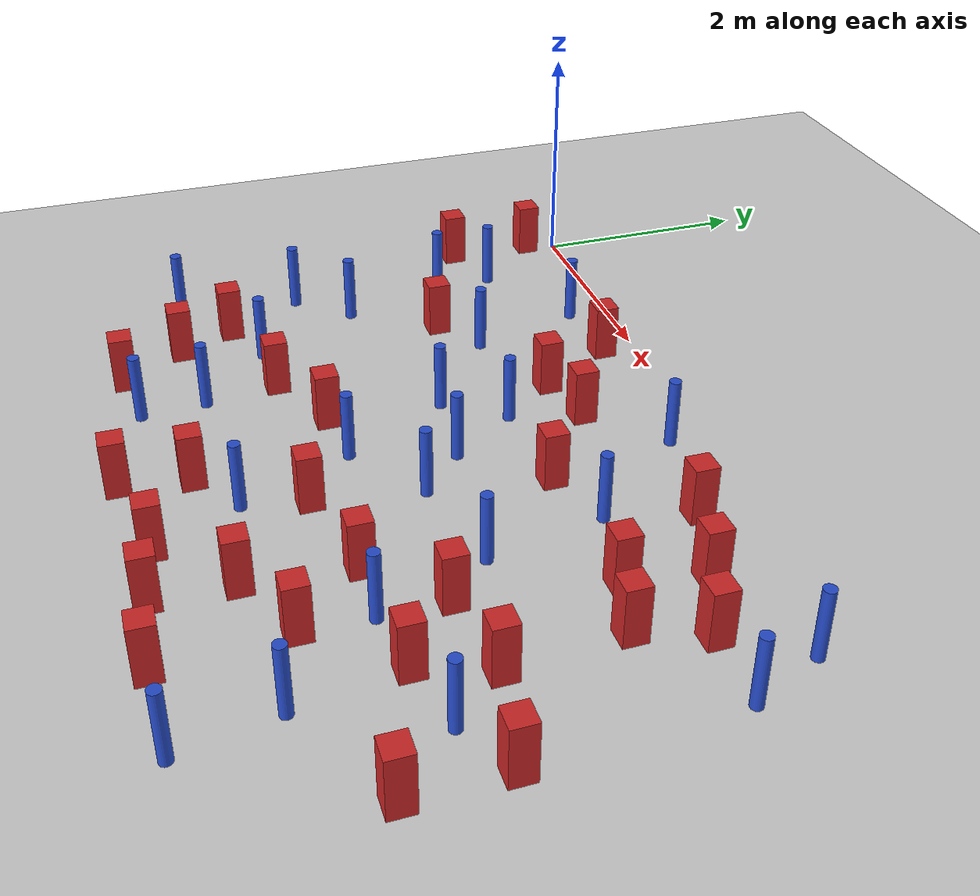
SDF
<sdf version="1.6">
 <world name="default">
  <model name="ground_plane">
   <static>1</static>
   <link name="link">
    <collision name="collision">
     <geometry><plane><normal>0 0 1</normal><size>100 100</size></plane></geometry>
     <surface><friction><ode><mu>100</mu><mu2>50</mu2></ode></friction></surface>
    </collision>
    <visual name="visual">
     <cast_shadows>0</cast_shadows>
     <geometry><plane><normal>0 0 1</normal><size>100 100</size></plane></geometry>
     <material>
      <ambient>1.0 1.0 1.0 1.0</ambient>
      <diffuse>0.8 0.8 0.8 1.0</diffuse>
      <specular>0.01 0.01 0.01 1.000000</specular>
     </material>
    </visual>
   </link>
  </model>
  <model name="pole_obstacle0">
   <static>true</static>
   <pose>3.56533259858 -0.322572710394 7.38925637345e-09 -8.471706928e-08 1.24976765172e-08 -1.74513093013e-07</pose>
   <link name="link">
    <pose>0 0 0.3 0 -0 0</pose>
    <inertial>
     <mass>1</mass>
     <inertia><ixx>0.145833</ixx><ixy>0</ixy><ixz>0</ixz><iyy>0.145833</iyy><iyz>0</iyz><izz>0.125</izz></inertia>
    </inertial>
    <collision name="collision">
     <geometry><cylinder><radius>0.05</radius><length>.6</length></cylinder></geometry>
    </collision>
    <visual name="visual">
     <geometry><cylinder><radius>0.05</radius><length>.6</length></cylinder></geometry>
     <material>
      <script><name>Gazebo/Blue</name><uri>file://media/materials/scripts/gazebo.material</uri></script>
     </material>
    </visual>
   </link>
  </model>
  <model name="square_post_obstacle8">
   <static>true</static>
   <pose>2.43075801813 -2.92088235214 1.91545236811e-07 -7.35059704564e-06 1.12565212e-07 2.39332434364e-05</pose>
   <link name="link">
    <pose>0 0 0.25 0 -0 0</pose>
    <inertial>
     <mass>100</mass>
     <inertia>
      <ixx>0.166667</ixx>
      <ixy>0</ixy>
      <ixz>0</ixz>
      <iyy>0.166667</iyy>
      <iyz>0</iyz>
      <izz>0.166667</izz>
     </inertia>
    </inertial>
    <collision name="collision"><geometry><box><size>.2 .2 .5</size></box></geometry></collision>
    <visual name="visual">
     <geometry><box><size>.2 .2 .5</size></box></geometry>
     <material>
      <script><name>Gazebo/Red</name><uri>file://media/materials/scripts/gazebo.material</uri></script>
     </material>
    </visual>
   </link>
  </model>
  <model name="pole_obstacle6">
   <static>true</static>
   <pose>6.30852490096 -1.00948622064 7.38925637345e-09 -8.471706928e-08 1.24976765101e-08 -1.74513093015e-07</pose>
   <link name="link">
    <pose>0 0 0.3 0 -0 0</pose>
    <inertial>
     <mass>1</mass>
     <inertia><ixx>0.145833</ixx><ixy>0</ixy><ixz>0</ixz><iyy>0.145833</iyy><iyz>0</iyz><izz>0.125</izz></inertia>
    </inertial>
    <collision name="collision">
     <geometry><cylinder><radius>0.05</radius><length>.6</length></cylinder></geometry>
    </collision>
    <visual name="visual">
     <geometry><cylinder><radius>0.05</radius><length>.6</length></cylinder></geometry>
     <material>
      <script><name>Gazebo/Blue</name><uri>file://media/materials/scripts/gazebo.material</uri></script>
     </material>
    </visual>
   </link>
  </model>
  <model name="square_post_obstacle10">
   <static>true</static>
   <pose>-0.0478637047065 -0.286412599009 1.91545236811e-07 -7.35059704564e-06 1.12565212e-07 2.39332434364e-05</pose>
   <link name="link">
    <pose>0 0 0.25 0 -0 0</pose>
    <inertial>
     <mass>100</mass>
     <inertia>
      <ixx>0.166667</ixx>
      <ixy>0</ixy>
      <ixz>0</ixz>
      <iyy>0.166667</iyy>
      <iyz>0</iyz>
      <izz>0.166667</izz>
     </inertia>
    </inertial>
    <collision name="collision"><geometry><box><size>.2 .2 .5</size></box></geometry></collision>
    <visual name="visual">
     <geometry><box><size>.2 .2 .5</size></box></geometry>
     <material>
      <script><name>Gazebo/Red</name><uri>file://media/materials/scripts/gazebo.material</uri></script>
     </material>
    </visual>
   </link>
  </model>
  <model name="square_post_obstacle12">
   <static>true</static>
   <pose>5.5033230095 -1.52236215831 1.91545236811e-07 -7.35059704564e-06 1.12565212e-07 2.39332434364e-05</pose>
   <link name="link">
    <pose>0 0 0.25 0 -0 0</pose>
    <inertial>
     <mass>100</mass>
     <inertia>
      <ixx>0.166667</ixx>
      <ixy>0</ixy>
      <ixz>0</ixz>
      <iyy>0.166667</iyy>
      <iyz>0</iyz>
      <izz>0.166667</izz>
     </inertia>
    </inertial>
    <collision name="collision"><geometry><box><size>.2 .2 .5</size></box></geometry></collision>
    <visual name="visual">
     <geometry><box><size>.2 .2 .5</size></box></geometry>
     <material>
      <script><name>Gazebo/Red</name><uri>file://media/materials/scripts/gazebo.material</uri></script>
     </material>
    </visual>
   </link>
  </model>
  <model name="pole_obstacle11">
   <static>true</static>
   <pose>0.472975062217 -1.38549482698 7.38925637345e-09 -8.47170692798e-08 1.24976765018e-08 -1.7451309302e-07</pose>
   <link name="link">
    <pose>0 0 0.3 0 -0 0</pose>
    <inertial>
     <mass>1</mass>
     <inertia><ixx>0.145833</ixx><ixy>0</ixy><ixz>0</ixz><iyy>0.145833</iyy><iyz>0</iyz><izz>0.125</izz></inertia>
    </inertial>
    <collision name="collision">
     <geometry><cylinder><radius>0.05</radius><length>.6</length></cylinder></geometry>
    </collision>
    <visual name="visual">
     <geometry><cylinder><radius>0.05</radius><length>.6</length></cylinder></geometry>
     <material>
      <script><name>Gazebo/Blue</name><uri>file://media/materials/scripts/gazebo.material</uri></script>
     </material>
    </visual>
   </link>
  </model>
  <model name="square_post_obstacle22">
   <static>true</static>
   <pose>3.46675804985 -3.27936390242 1.91545236811e-07 -7.35059704564e-06 1.12565212e-07 2.39332434364e-05</pose>
   <link name="link">
    <pose>0 0 0.25 0 -0 0</pose>
    <inertial>
     <mass>100</mass>
     <inertia>
      <ixx>0.166667</ixx>
      <ixy>0</ixy>
      <ixz>0</ixz>
      <iyy>0.166667</iyy>
      <iyz>0</iyz>
      <izz>0.166667</izz>
     </inertia>
    </inertial>
    <collision name="collision"><geometry><box><size>.2 .2 .5</size></box></geometry></collision>
    <visual name="visual">
     <geometry><box><size>.2 .2 .5</size></box></geometry>
     <material>
      <script><name>Gazebo/Red</name><uri>file://media/materials/scripts/gazebo.material</uri></script>
     </material>
    </visual>
   </link>
  </model>
  <model name="pole_obstacle16">
   <static>true</static>
   <pose>4.4877822202 -2.19944711472 7.38925637345e-09 -8.47170692798e-08 1.24976764937e-08 -1.74513093023e-07</pose>
   <link name="link">
    <pose>0 0 0.3 0 -0 0</pose>
    <inertial>
     <mass>1</mass>
     <inertia><ixx>0.145833</ixx><ixy>0</ixy><ixz>0</ixz><iyy>0.145833</iyy><iyz>0</iyz><izz>0.125</izz></inertia>
    </inertial>
    <collision name="collision">
     <geometry><cylinder><radius>0.05</radius><length>.6</length></cylinder></geometry>
    </collision>
    <visual name="visual">
     <geometry><cylinder><radius>0.05</radius><length>.6</length></cylinder></geometry>
     <material>
      <script><name>Gazebo/Blue</name><uri>file://media/materials/scripts/gazebo.material</uri></script>
     </material>
    </visual>
   </link>
  </model>
  <model name="square_post_obstacle38">
   <static>true</static>
   <pose>3.75333104652 -1.42210569537 1.91545236811e-07 -7.35059704564e-06 1.12565212e-07 2.39332434364e-05</pose>
   <link name="link">
    <pose>0 0 0.25 0 -0 0</pose>
    <inertial>
     <mass>100</mass>
     <inertia>
      <ixx>0.166667</ixx>
      <ixy>0</ixy>
      <ixz>0</ixz>
      <iyy>0.166667</iyy>
      <iyz>0</iyz>
      <izz>0.166667</izz>
     </inertia>
    </inertial>
    <collision name="collision"><geometry><box><size>.2 .2 .5</size></box></geometry></collision>
    <visual name="visual">
     <geometry><box><size>.2 .2 .5</size></box></geometry>
     <material>
      <script><name>Gazebo/Red</name><uri>file://media/materials/scripts/gazebo.material</uri></script>
     </material>
    </visual>
   </link>
  </model>
  <model name="pole_obstacle40">
   <static>true</static>
   <pose>2.83659885265 -1.45965572089 7.38925637345e-09 -8.471706928e-08 1.24976765152e-08 -1.74513093012e-07</pose>
   <link name="link">
    <pose>0 0 0.3 0 -0 0</pose>
    <inertial>
     <mass>1</mass>
     <inertia><ixx>0.145833</ixx><ixy>0</ixy><ixz>0</ixz><iyy>0.145833</iyy><iyz>0</iyz><izz>0.125</izz></inertia>
    </inertial>
    <collision name="collision">
     <geometry><cylinder><radius>0.05</radius><length>.6</length></cylinder></geometry>
    </collision>
    <visual name="visual">
     <geometry><cylinder><radius>0.05</radius><length>.6</length></cylinder></geometry>
     <material>
      <script><name>Gazebo/Blue</name><uri>file://media/materials/scripts/gazebo.material</uri></script>
     </material>
    </visual>
   </link>
  </model>
  <model name="pole_obstacle49">
   <static>true</static>
   <pose>3.6028088051 -2.39364469777 7.38925637345e-09 -8.47170692798e-08 1.24976764939e-08 -1.74513093025e-07</pose>
   <link name="link">
    <pose>0 0 0.3 0 -0 0</pose>
    <inertial>
     <mass>1</mass>
     <inertia><ixx>0.145833</ixx><ixy>0</ixy><ixz>0</ixz><iyy>0.145833</iyy><iyz>0</iyz><izz>0.125</izz></inertia>
    </inertial>
    <collision name="collision">
     <geometry><cylinder><radius>0.05</radius><length>.6</length></cylinder></geometry>
    </collision>
    <visual name="visual">
     <geometry><cylinder><radius>0.05</radius><length>.6</length></cylinder></geometry>
     <material>
      <script><name>Gazebo/Blue</name><uri>file://media/materials/scripts/gazebo.material</uri></script>
     </material>
    </visual>
   </link>
  </model>
  <model name="square_post_obstacle53">
   <static>true</static>
   <pose>6.35571938624 -3.35591718292 1.91545236811e-07 -7.35059704564e-06 1.12565212e-07 2.39332434364e-05</pose>
   <link name="link">
    <pose>0 0 0.25 0 -0 0</pose>
    <inertial>
     <mass>100</mass>
     <inertia>
      <ixx>0.166667</ixx>
      <ixy>0</ixy>
      <ixz>0</ixz>
      <iyy>0.166667</iyy>
      <iyz>0</iyz>
      <izz>0.166667</izz>
     </inertia>
    </inertial>
    <collision name="collision"><geometry><box><size>.2 .2 .5</size></box></geometry></collision>
    <visual name="visual">
     <geometry><box><size>.2 .2 .5</size></box></geometry>
     <material>
      <script><name>Gazebo/Red</name><uri>file://media/materials/scripts/gazebo.material</uri></script>
     </material>
    </visual>
   </link>
  </model>
  <model name="square_post_obstacle56">
   <static>true</static>
   <pose>4.88244618017 -4.63339340298 1.91545236811e-07 -7.35059704564e-06 1.12565212e-07 2.39332434364e-05</pose>
   <link name="link">
    <pose>0 0 0.25 0 -0 0</pose>
    <inertial>
     <mass>100</mass>
     <inertia>
      <ixx>0.166667</ixx>
      <ixy>0</ixy>
      <ixz>0</ixz>
      <iyy>0.166667</iyy>
      <iyz>0</iyz>
      <izz>0.166667</izz>
     </inertia>
    </inertial>
    <collision name="collision"><geometry><box><size>.2 .2 .5</size></box></geometry></collision>
    <visual name="visual">
     <geometry><box><size>.2 .2 .5</size></box></geometry>
     <material>
      <script><name>Gazebo/Red</name><uri>file://media/materials/scripts/gazebo.material</uri></script>
     </material>
    </visual>
   </link>
  </model>
  <model name="pole_obstacle58">
   <static>true</static>
   <pose>0.205299897545 -3.85077561081 7.38925637345e-09 -8.47170692792e-08 1.24976764352e-08 -1.74513093043e-07</pose>
   <link name="link">
    <pose>0 0 0.3 0 -0 0</pose>
    <inertial>
     <mass>1</mass>
     <inertia><ixx>0.145833</ixx><ixy>0</ixy><ixz>0</ixz><iyy>0.145833</iyy><iyz>0</iyz><izz>0.125</izz></inertia>
    </inertial>
    <collision name="collision">
     <geometry><cylinder><radius>0.05</radius><length>.6</length></cylinder></geometry>
    </collision>
    <visual name="visual">
     <geometry><cylinder><radius>0.05</radius><length>.6</length></cylinder></geometry>
     <material>
      <script><name>Gazebo/Blue</name><uri>file://media/materials/scripts/gazebo.material</uri></script>
     </material>
    </visual>
   </link>
  </model>
  <model name="pole_obstacle59">
   <static>true</static>
   <pose>0.379165182688 -2.7855094456 7.38925637345e-09 -8.471706928e-08 1.24976765084e-08 -1.74513093017e-07</pose>
   <link name="link">
    <pose>0 0 0.3 0 -0 0</pose>
    <inertial>
     <mass>1</mass>
     <inertia><ixx>0.145833</ixx><ixy>0</ixy><ixz>0</ixz><iyy>0.145833</iyy><iyz>0</iyz><izz>0.125</izz></inertia>
    </inertial>
    <collision name="collision">
     <geometry><cylinder><radius>0.05</radius><length>.6</length></cylinder></geometry>
    </collision>
    <visual name="visual">
     <geometry><cylinder><radius>0.05</radius><length>.6</length></cylinder></geometry>
     <material>
      <script><name>Gazebo/Blue</name><uri>file://media/materials/scripts/gazebo.material</uri></script>
     </material>
    </visual>
   </link>
  </model>
  <model name="square_post_obstacle77">
   <static>true</static>
   <pose>1.34608658798 -4.47227315533 1.91545236811e-07 -7.35059704564e-06 1.12565212e-07 2.39332434364e-05</pose>
   <link name="link">
    <pose>0 0 0.25 0 -0 0</pose>
    <inertial>
     <mass>100</mass>
     <inertia>
      <ixx>0.166667</ixx>
      <ixy>0</ixy>
      <ixz>0</ixz>
      <iyy>0.166667</iyy>
      <iyz>0</iyz>
      <izz>0.166667</izz>
     </inertia>
    </inertial>
    <collision name="collision"><geometry><box><size>.2 .2 .5</size></box></geometry></collision>
    <visual name="visual">
     <geometry><box><size>.2 .2 .5</size></box></geometry>
     <material>
      <script><name>Gazebo/Red</name><uri>file://media/materials/scripts/gazebo.material</uri></script>
     </material>
    </visual>
   </link>
  </model>
  <model name="pole_obstacle85">
   <static>true</static>
   <pose>0.498143849675 -0.878729412502 7.38925637345e-09 -8.47170692798e-08 1.24976764964e-08 -1.74513093023e-07</pose>
   <link name="link">
    <pose>0 0 0.3 0 -0 0</pose>
    <inertial>
     <mass>1</mass>
     <inertia><ixx>0.145833</ixx><ixy>0</ixy><ixz>0</ixz><iyy>0.145833</iyy><iyz>0</iyz><izz>0.125</izz></inertia>
    </inertial>
    <collision name="collision">
     <geometry><cylinder><radius>0.05</radius><length>.6</length></cylinder></geometry>
    </collision>
    <visual name="visual">
     <geometry><cylinder><radius>0.05</radius><length>.6</length></cylinder></geometry>
     <material>
      <script><name>Gazebo/Blue</name><uri>file://media/materials/scripts/gazebo.material</uri></script>
     </material>
    </visual>
   </link>
  </model>
  <model name="pole_obstacle94">
   <static>true</static>
   <pose>5.62407979414 -4.60386819557 7.38925637345e-09 -8.47170692796e-08 1.24976764786e-08 -1.74513093032e-07</pose>
   <link name="link">
    <pose>0 0 0.3 0 -0 0</pose>
    <inertial>
     <mass>1</mass>
     <inertia><ixx>0.145833</ixx><ixy>0</ixy><ixz>0</ixz><iyy>0.145833</iyy><iyz>0</iyz><izz>0.125</izz></inertia>
    </inertial>
    <collision name="collision">
     <geometry><cylinder><radius>0.05</radius><length>.6</length></cylinder></geometry>
    </collision>
    <visual name="visual">
     <geometry><cylinder><radius>0.05</radius><length>.6</length></cylinder></geometry>
     <material>
      <script><name>Gazebo/Blue</name><uri>file://media/materials/scripts/gazebo.material</uri></script>
     </material>
    </visual>
   </link>
  </model>
  <model name="square_post_obstacle83">
   <static>true</static>
   <pose>5.1459617341 -0.752808894021 1.91545236811e-07 -7.35059704564e-06 1.12565212e-07 2.39332434364e-05</pose>
   <link name="link">
    <pose>0 0 0.25 0 -0 0</pose>
    <inertial>
     <mass>100</mass>
     <inertia>
      <ixx>0.166667</ixx>
      <ixy>0</ixy>
      <ixz>0</ixz>
      <iyy>0.166667</iyy>
      <iyz>0</iyz>
      <izz>0.166667</izz>
     </inertia>
    </inertial>
    <collision name="collision"><geometry><box><size>.2 .2 .5</size></box></geometry></collision>
    <visual name="visual">
     <geometry><box><size>.2 .2 .5</size></box></geometry>
     <material>
      <script><name>Gazebo/Red</name><uri>file://media/materials/scripts/gazebo.material</uri></script>
     </material>
    </visual>
   </link>
  </model>
  <model name="square_post_obstacle91">
   <static>true</static>
   <pose>3.68038937704 -4.48300736804 1.91545236811e-07 -7.35059704564e-06 1.12565212e-07 2.39332434364e-05</pose>
   <link name="link">
    <pose>0 0 0.25 0 -0 0</pose>
    <inertial>
     <mass>100</mass>
     <inertia>
      <ixx>0.166667</ixx>
      <ixy>0</ixy>
      <ixz>0</ixz>
      <iyy>0.166667</iyy>
      <iyz>0</iyz>
      <izz>0.166667</izz>
     </inertia>
    </inertial>
    <collision name="collision"><geometry><box><size>.2 .2 .5</size></box></geometry></collision>
    <visual name="visual">
     <geometry><box><size>.2 .2 .5</size></box></geometry>
     <material>
      <script><name>Gazebo/Red</name><uri>file://media/materials/scripts/gazebo.material</uri></script>
     </material>
    </visual>
   </link>
  </model>
  <model name="pole_obstacle103">
   <static>true</static>
   <pose>2.95610911781 -2.85744393125 7.38925637345e-09 -8.47170692798e-08 1.24976764939e-08 -1.74513093025e-07</pose>
   <link name="link">
    <pose>0 0 0.3 0 -0 0</pose>
    <inertial>
     <mass>1</mass>
     <inertia><ixx>0.145833</ixx><ixy>0</ixy><ixz>0</ixz><iyy>0.145833</iyy><iyz>0</iyz><izz>0.125</izz></inertia>
    </inertial>
    <collision name="collision">
     <geometry><cylinder><radius>0.05</radius><length>.6</length></cylinder></geometry>
    </collision>
    <visual name="visual">
     <geometry><cylinder><radius>0.05</radius><length>.6</length></cylinder></geometry>
     <material>
      <script><name>Gazebo/Blue</name><uri>file://media/materials/scripts/gazebo.material</uri></script>
     </material>
    </visual>
   </link>
  </model>
  <model name="square_post_obstacle93">
   <static>true</static>
   <pose>5.01571909529 -1.37789787938 1.91545236811e-07 -7.35059704564e-06 1.12565212e-07 2.39332434364e-05</pose>
   <link name="link">
    <pose>0 0 0.25 0 -0 0</pose>
    <inertial>
     <mass>100</mass>
     <inertia>
      <ixx>0.166667</ixx>
      <ixy>0</ixy>
      <ixz>0</ixz>
      <iyy>0.166667</iyy>
      <iyz>0</iyz>
      <izz>0.166667</izz>
     </inertia>
    </inertial>
    <collision name="collision"><geometry><box><size>.2 .2 .5</size></box></geometry></collision>
    <visual name="visual">
     <geometry><box><size>.2 .2 .5</size></box></geometry>
     <material>
      <script><name>Gazebo/Red</name><uri>file://media/materials/scripts/gazebo.material</uri></script>
     </material>
    </visual>
   </link>
  </model>
  <model name="square_post_obstacle94">
   <static>true</static>
   <pose>5.57141871091 -2.45692358792 1.91545236811e-07 -7.35059704564e-06 1.12565212e-07 2.39332434364e-05</pose>
   <link name="link">
    <pose>0 0 0.25 0 -0 0</pose>
    <inertial>
     <mass>100</mass>
     <inertia>
      <ixx>0.166667</ixx>
      <ixy>0</ixy>
      <ixz>0</ixz>
      <iyy>0.166667</iyy>
      <iyz>0</iyz>
      <izz>0.166667</izz>
     </inertia>
    </inertial>
    <collision name="collision"><geometry><box><size>.2 .2 .5</size></box></geometry></collision>
    <visual name="visual">
     <geometry><box><size>.2 .2 .5</size></box></geometry>
     <material>
      <script><name>Gazebo/Red</name><uri>file://media/materials/scripts/gazebo.material</uri></script>
     </material>
    </visual>
   </link>
  </model>
  <model name="square_post_obstacle98">
   <static>true</static>
   <pose>4.31509921456 -3.0915639424 1.91545236811e-07 -7.35059704564e-06 1.12565212e-07 2.39332434364e-05</pose>
   <link name="link">
    <pose>0 0 0.25 0 -0 0</pose>
    <inertial>
     <mass>100</mass>
     <inertia>
      <ixx>0.166667</ixx>
      <ixy>0</ixy>
      <ixz>0</ixz>
      <iyy>0.166667</iyy>
      <iyz>0</iyz>
      <izz>0.166667</izz>
     </inertia>
    </inertial>
    <collision name="collision"><geometry><box><size>.2 .2 .5</size></box></geometry></collision>
    <visual name="visual">
     <geometry><box><size>.2 .2 .5</size></box></geometry>
     <material>
      <script><name>Gazebo/Red</name><uri>file://media/materials/scripts/gazebo.material</uri></script>
     </material>
    </visual>
   </link>
  </model>
  <model name="square_post_obstacle99">
   <static>true</static>
   <pose>2.93250546607 -4.09192154065 1.91545236811e-07 -7.35059704564e-06 1.12565212e-07 2.39332434364e-05</pose>
   <link name="link">
    <pose>0 0 0.25 0 -0 0</pose>
    <inertial>
     <mass>100</mass>
     <inertia>
      <ixx>0.166667</ixx>
      <ixy>0</ixy>
      <ixz>0</ixz>
      <iyy>0.166667</iyy>
      <iyz>0</iyz>
      <izz>0.166667</izz>
     </inertia>
    </inertial>
    <collision name="collision"><geometry><box><size>.2 .2 .5</size></box></geometry></collision>
    <visual name="visual">
     <geometry><box><size>.2 .2 .5</size></box></geometry>
     <material>
      <script><name>Gazebo/Red</name><uri>file://media/materials/scripts/gazebo.material</uri></script>
     </material>
    </visual>
   </link>
  </model>
  <model name="square_post_obstacle104">
   <static>true</static>
   <pose>3.00594739832 -0.877075867944 1.91545236811e-07 -7.35059704564e-06 1.12565212e-07 2.39332434364e-05</pose>
   <link name="link">
    <pose>0 0 0.25 0 -0 0</pose>
    <inertial>
     <mass>100</mass>
     <inertia>
      <ixx>0.166667</ixx>
      <ixy>0</ixy>
      <ixz>0</ixz>
      <iyy>0.166667</iyy>
      <iyz>0</iyz>
      <izz>0.166667</izz>
     </inertia>
    </inertial>
    <collision name="collision"><geometry><box><size>.2 .2 .5</size></box></geometry></collision>
    <visual name="visual">
     <geometry><box><size>.2 .2 .5</size></box></geometry>
     <material>
      <script><name>Gazebo/Red</name><uri>file://media/materials/scripts/gazebo.material</uri></script>
     </material>
    </visual>
   </link>
  </model>
  <model name="pole_obstacle120">
   <static>true</static>
   <pose>3.21840615872 -2.03005543619 7.38925637345e-09 -8.471706928e-08 1.2497676511e-08 -1.74513093015e-07</pose>
   <link name="link">
    <pose>0 0 0.3 0 -0 0</pose>
    <inertial>
     <mass>1</mass>
     <inertia><ixx>0.145833</ixx><ixy>0</ixy><ixz>0</ixz><iyy>0.145833</iyy><iyz>0</iyz><izz>0.125</izz></inertia>
    </inertial>
    <collision name="collision">
     <geometry><cylinder><radius>0.05</radius><length>.6</length></cylinder></geometry>
    </collision>
    <visual name="visual">
     <geometry><cylinder><radius>0.05</radius><length>.6</length></cylinder></geometry>
     <material>
      <script><name>Gazebo/Blue</name><uri>file://media/materials/scripts/gazebo.material</uri></script>
     </material>
    </visual>
   </link>
  </model>
  <model name="pole_obstacle132">
   <static>true</static>
   <pose>0.774878127684 -2.33358473725 7.38925637345e-09 -8.47170692799e-08 1.2497676509e-08 -1.74513093016e-07</pose>
   <link name="link">
    <pose>0 0 0.3 0 -0 0</pose>
    <inertial>
     <mass>1</mass>
     <inertia><ixx>0.145833</ixx><ixy>0</ixy><ixz>0</ixz><iyy>0.145833</iyy><iyz>0</iyz><izz>0.125</izz></inertia>
    </inertial>
    <collision name="collision">
     <geometry><cylinder><radius>0.05</radius><length>.6</length></cylinder></geometry>
    </collision>
    <visual name="visual">
     <geometry><cylinder><radius>0.05</radius><length>.6</length></cylinder></geometry>
     <material>
      <script><name>Gazebo/Blue</name><uri>file://media/materials/scripts/gazebo.material</uri></script>
     </material>
    </visual>
   </link>
  </model>
  <model name="square_post_obstacle116">
   <static>true</static>
   <pose>2.09696277508 -0.318803115257 1.91545236811e-07 -7.35059704564e-06 1.12565212e-07 2.39332434364e-05</pose>
   <link name="link">
    <pose>0 0 0.25 0 -0 0</pose>
    <inertial>
     <mass>100</mass>
     <inertia>
      <ixx>0.166667</ixx>
      <ixy>0</ixy>
      <ixz>0</ixz>
      <iyy>0.166667</iyy>
      <iyz>0</iyz>
      <izz>0.166667</izz>
     </inertia>
    </inertial>
    <collision name="collision"><geometry><box><size>.2 .2 .5</size></box></geometry></collision>
    <visual name="visual">
     <geometry><box><size>.2 .2 .5</size></box></geometry>
     <material>
      <script><name>Gazebo/Red</name><uri>file://media/materials/scripts/gazebo.material</uri></script>
     </material>
    </visual>
   </link>
  </model>
  <model name="square_post_obstacle126">
   <static>true</static>
   <pose>5.36646114967 -3.01401856221 1.91545236811e-07 -7.35059704564e-06 1.12565212e-07 2.39332434364e-05</pose>
   <link name="link">
    <pose>0 0 0.25 0 -0 0</pose>
    <inertial>
     <mass>100</mass>
     <inertia>
      <ixx>0.166667</ixx>
      <ixy>0</ixy>
      <ixz>0</ixz>
      <iyy>0.166667</iyy>
      <iyz>0</iyz>
      <izz>0.166667</izz>
     </inertia>
    </inertial>
    <collision name="collision"><geometry><box><size>.2 .2 .5</size></box></geometry></collision>
    <visual name="visual">
     <geometry><box><size>.2 .2 .5</size></box></geometry>
     <material>
      <script><name>Gazebo/Red</name><uri>file://media/materials/scripts/gazebo.material</uri></script>
     </material>
    </visual>
   </link>
  </model>
  <model name="square_post_obstacle133">
   <static>true</static>
   <pose>0.769165490933 -3.4625746359 1.91545236811e-07 -7.35059704564e-06 1.12565212e-07 2.39332434364e-05</pose>
   <link name="link">
    <pose>0 0 0.25 0 -0 0</pose>
    <inertial>
     <mass>100</mass>
     <inertia>
      <ixx>0.166667</ixx>
      <ixy>0</ixy>
      <ixz>0</ixz>
      <iyy>0.166667</iyy>
      <iyz>0</iyz>
      <izz>0.166667</izz>
     </inertia>
    </inertial>
    <collision name="collision"><geometry><box><size>.2 .2 .5</size></box></geometry></collision>
    <visual name="visual">
     <geometry><box><size>.2 .2 .5</size></box></geometry>
     <material>
      <script><name>Gazebo/Red</name><uri>file://media/materials/scripts/gazebo.material</uri></script>
     </material>
    </visual>
   </link>
  </model>
  <model name="pole_obstacle144">
   <static>true</static>
   <pose>1.40497289154 -0.354519519069 7.38925637345e-09 -8.47170692799e-08 1.24976765065e-08 -1.74513093017e-07</pose>
   <link name="link">
    <pose>0 0 0.3 0 -0 0</pose>
    <inertial>
     <mass>1</mass>
     <inertia><ixx>0.145833</ixx><ixy>0</ixy><ixz>0</ixz><iyy>0.145833</iyy><iyz>0</iyz><izz>0.125</izz></inertia>
    </inertial>
    <collision name="collision">
     <geometry><cylinder><radius>0.05</radius><length>.6</length></cylinder></geometry>
    </collision>
    <visual name="visual">
     <geometry><cylinder><radius>0.05</radius><length>.6</length></cylinder></geometry>
     <material>
      <script><name>Gazebo/Blue</name><uri>file://media/materials/scripts/gazebo.material</uri></script>
     </material>
    </visual>
   </link>
  </model>
  <model name="square_post_obstacle135">
   <static>true</static>
   <pose>1.79048725682 -3.22386346009 1.91545236811e-07 -7.35059704564e-06 1.12565212e-07 2.39332434364e-05</pose>
   <link name="link">
    <pose>0 0 0.25 0 -0 0</pose>
    <inertial>
     <mass>100</mass>
     <inertia>
      <ixx>0.166667</ixx>
      <ixy>0</ixy>
      <ixz>0</ixz>
      <iyy>0.166667</iyy>
      <iyz>0</iyz>
      <izz>0.166667</izz>
     </inertia>
    </inertial>
    <collision name="collision"><geometry><box><size>.2 .2 .5</size></box></geometry></collision>
    <visual name="visual">
     <geometry><box><size>.2 .2 .5</size></box></geometry>
     <material>
      <script><name>Gazebo/Red</name><uri>file://media/materials/scripts/gazebo.material</uri></script>
     </material>
    </visual>
   </link>
  </model>
  <model name="square_post_obstacle139">
   <static>true</static>
   <pose>2.84502531474 -4.6604186274 1.91545236811e-07 -7.35059704564e-06 1.12565212e-07 2.39332434364e-05</pose>
   <link name="link">
    <pose>0 0 0.25 0 -0 0</pose>
    <inertial>
     <mass>100</mass>
     <inertia>
      <ixx>0.166667</ixx>
      <ixy>0</ixy>
      <ixz>0</ixz>
      <iyy>0.166667</iyy>
      <iyz>0</iyz>
      <izz>0.166667</izz>
     </inertia>
    </inertial>
    <collision name="collision"><geometry><box><size>.2 .2 .5</size></box></geometry></collision>
    <visual name="visual">
     <geometry><box><size>.2 .2 .5</size></box></geometry>
     <material>
      <script><name>Gazebo/Red</name><uri>file://media/materials/scripts/gazebo.material</uri></script>
     </material>
    </visual>
   </link>
  </model>
  <model name="square_post_obstacle152">
   <static>true</static>
   <pose>-0.0622827077389 -1.06881645216 1.91545236811e-07 -7.35059704564e-06 1.12565212e-07 2.39332434364e-05</pose>
   <link name="link">
    <pose>0 0 0.25 0 -0 0</pose>
    <inertial>
     <mass>100</mass>
     <inertia>
      <ixx>0.166667</ixx>
      <ixy>0</ixy>
      <ixz>0</ixz>
      <iyy>0.166667</iyy>
      <iyz>0</iyz>
      <izz>0.166667</izz>
     </inertia>
    </inertial>
    <collision name="collision"><geometry><box><size>.2 .2 .5</size></box></geometry></collision>
    <visual name="visual">
     <geometry><box><size>.2 .2 .5</size></box></geometry>
     <material>
      <script><name>Gazebo/Red</name><uri>file://media/materials/scripts/gazebo.material</uri></script>
     </material>
    </visual>
   </link>
  </model>
  <model name="pole_obstacle161">
   <static>true</static>
   <pose>2.48626886561 -1.95212679801 7.38925637345e-09 -8.471706928e-08 1.249767651e-08 -1.74513093015e-07</pose>
   <link name="link">
    <pose>0 0 0.3 0 -0 0</pose>
    <inertial>
     <mass>1</mass>
     <inertia><ixx>0.145833</ixx><ixy>0</ixy><ixz>0</ixz><iyy>0.145833</iyy><iyz>0</iyz><izz>0.125</izz></inertia>
    </inertial>
    <collision name="collision">
     <geometry><cylinder><radius>0.05</radius><length>.6</length></cylinder></geometry>
    </collision>
    <visual name="visual">
     <geometry><cylinder><radius>0.05</radius><length>.6</length></cylinder></geometry>
     <material>
      <script><name>Gazebo/Blue</name><uri>file://media/materials/scripts/gazebo.material</uri></script>
     </material>
    </visual>
   </link>
  </model>
  <model name="square_post_obstacle154">
   <static>true</static>
   <pose>6.35521413139 -2.61791996085 1.91545236811e-07 -7.35059704564e-06 1.12565212e-07 2.39332434364e-05</pose>
   <link name="link">
    <pose>0 0 0.25 0 -0 0</pose>
    <inertial>
     <mass>100</mass>
     <inertia>
      <ixx>0.166667</ixx>
      <ixy>0</ixy>
      <ixz>0</ixz>
      <iyy>0.166667</iyy>
      <iyz>0</iyz>
      <izz>0.166667</izz>
     </inertia>
    </inertial>
    <collision name="collision"><geometry><box><size>.2 .2 .5</size></box></geometry></collision>
    <visual name="visual">
     <geometry><box><size>.2 .2 .5</size></box></geometry>
     <material>
      <script><name>Gazebo/Red</name><uri>file://media/materials/scripts/gazebo.material</uri></script>
     </material>
    </visual>
   </link>
  </model>
  <model name="square_post_obstacle156">
   <static>true</static>
   <pose>2.48936207223 -0.989295382847 1.91545236811e-07 -7.35059704564e-06 1.12565212e-07 2.39332434364e-05</pose>
   <link name="link">
    <pose>0 0 0.25 0 -0 0</pose>
    <inertial>
     <mass>100</mass>
     <inertia>
      <ixx>0.166667</ixx>
      <ixy>0</ixy>
      <ixz>0</ixz>
      <iyy>0.166667</iyy>
      <iyz>0</iyz>
      <izz>0.166667</izz>
     </inertia>
    </inertial>
    <collision name="collision"><geometry><box><size>.2 .2 .5</size></box></geometry></collision>
    <visual name="visual">
     <geometry><box><size>.2 .2 .5</size></box></geometry>
     <material>
      <script><name>Gazebo/Red</name><uri>file://media/materials/scripts/gazebo.material</uri></script>
     </material>
    </visual>
   </link>
  </model>
  <model name="square_post_obstacle158">
   <static>true</static>
   <pose>4.48269715039 -0.52780574935 1.91545236811e-07 -7.35059704564e-06 1.12565212e-07 2.39332434364e-05</pose>
   <link name="link">
    <pose>0 0 0.25 0 -0 0</pose>
    <inertial>
     <mass>100</mass>
     <inertia>
      <ixx>0.166667</ixx>
      <ixy>0</ixy>
      <ixz>0</ixz>
      <iyy>0.166667</iyy>
      <iyz>0</iyz>
      <izz>0.166667</izz>
     </inertia>
    </inertial>
    <collision name="collision"><geometry><box><size>.2 .2 .5</size></box></geometry></collision>
    <visual name="visual">
     <geometry><box><size>.2 .2 .5</size></box></geometry>
     <material>
      <script><name>Gazebo/Red</name><uri>file://media/materials/scripts/gazebo.material</uri></script>
     </material>
    </visual>
   </link>
  </model>
  <model name="square_post_obstacle159">
   <static>true</static>
   <pose>4.24263875284 -3.94431988952 1.91545236811e-07 -7.35059704564e-06 1.12565212e-07 2.39332434364e-05</pose>
   <link name="link">
    <pose>0 0 0.25 0 -0 0</pose>
    <inertial>
     <mass>100</mass>
     <inertia>
      <ixx>0.166667</ixx>
      <ixy>0</ixy>
      <ixz>0</ixz>
      <iyy>0.166667</iyy>
      <iyz>0</iyz>
      <izz>0.166667</izz>
     </inertia>
    </inertial>
    <collision name="collision"><geometry><box><size>.2 .2 .5</size></box></geometry></collision>
    <visual name="visual">
     <geometry><box><size>.2 .2 .5</size></box></geometry>
     <material>
      <script><name>Gazebo/Red</name><uri>file://media/materials/scripts/gazebo.material</uri></script>
     </material>
    </visual>
   </link>
  </model>
  <model name="pole_obstacle171">
   <static>true</static>
   <pose>4.30627732401 -1.21663934614 7.38925637345e-09 -8.471706928e-08 1.24976765134e-08 -1.74513093015e-07</pose>
   <link name="link">
    <pose>0 0 0.3 0 -0 0</pose>
    <inertial>
     <mass>1</mass>
     <inertia><ixx>0.145833</ixx><ixy>0</ixy><ixz>0</ixz><iyy>0.145833</iyy><iyz>0</iyz><izz>0.125</izz></inertia>
    </inertial>
    <collision name="collision">
     <geometry><cylinder><radius>0.05</radius><length>.6</length></cylinder></geometry>
    </collision>
    <visual name="visual">
     <geometry><cylinder><radius>0.05</radius><length>.6</length></cylinder></geometry>
     <material>
      <script><name>Gazebo/Blue</name><uri>file://media/materials/scripts/gazebo.material</uri></script>
     </material>
    </visual>
   </link>
  </model>
  <model name="pole_obstacle175">
   <static>true</static>
   <pose>6.05858141176 -0.425304552647 7.38925637345e-09 -8.47170692798e-08 1.24976765003e-08 -1.7451309302e-07</pose>
   <link name="link">
    <pose>0 0 0.3 0 -0 0</pose>
    <inertial>
     <mass>1</mass>
     <inertia><ixx>0.145833</ixx><ixy>0</ixy><ixz>0</ixz><iyy>0.145833</iyy><iyz>0</iyz><izz>0.125</izz></inertia>
    </inertial>
    <collision name="collision">
     <geometry><cylinder><radius>0.05</radius><length>.6</length></cylinder></geometry>
    </collision>
    <visual name="visual">
     <geometry><cylinder><radius>0.05</radius><length>.6</length></cylinder></geometry>
     <material>
      <script><name>Gazebo/Blue</name><uri>file://media/materials/scripts/gazebo.material</uri></script>
     </material>
    </visual>
   </link>
  </model>
  <model name="pole_obstacle182">
   <static>true</static>
   <pose>1.23769407791 -3.25377574014 7.38925637345e-09 -8.47170692799e-08 1.24976765053e-08 -1.74513093017e-07</pose>
   <link name="link">
    <pose>0 0 0.3 0 -0 0</pose>
    <inertial>
     <mass>1</mass>
     <inertia><ixx>0.145833</ixx><ixy>0</ixy><ixz>0</ixz><iyy>0.145833</iyy><iyz>0</iyz><izz>0.125</izz></inertia>
    </inertial>
    <collision name="collision">
     <geometry><cylinder><radius>0.05</radius><length>.6</length></cylinder></geometry>
    </collision>
    <visual name="visual">
     <geometry><cylinder><radius>0.05</radius><length>.6</length></cylinder></geometry>
     <material>
      <script><name>Gazebo/Blue</name><uri>file://media/materials/scripts/gazebo.material</uri></script>
     </material>
    </visual>
   </link>
  </model>
  <model name="pole_obstacle184">
   <static>true</static>
   <pose>5.91420279134 -2.87057271405 7.38925637345e-09 -8.47170692798e-08 1.24976764937e-08 -1.74513093023e-07</pose>
   <link name="link">
    <pose>0 0 0.3 0 -0 0</pose>
    <inertial>
     <mass>1</mass>
     <inertia><ixx>0.145833</ixx><ixy>0</ixy><ixz>0</ixz><iyy>0.145833</iyy><iyz>0</iyz><izz>0.125</izz></inertia>
    </inertial>
    <collision name="collision">
     <geometry><cylinder><radius>0.05</radius><length>.6</length></cylinder></geometry>
    </collision>
    <visual name="visual">
     <geometry><cylinder><radius>0.05</radius><length>.6</length></cylinder></geometry>
     <material>
      <script><name>Gazebo/Blue</name><uri>file://media/materials/scripts/gazebo.material</uri></script>
     </material>
    </visual>
   </link>
  </model>
  <model name="square_post_obstacle174">
   <static>true</static>
   <pose>1.2408720313 -1.61656159471 1.91545236811e-07 -7.35059704564e-06 1.12565212e-07 2.39332434364e-05</pose>
   <link name="link">
    <pose>0 0 0.25 0 -0 0</pose>
    <inertial>
     <mass>100</mass>
     <inertia>
      <ixx>0.166667</ixx>
      <ixy>0</ixy>
      <ixz>0</ixz>
      <iyy>0.166667</iyy>
      <iyz>0</iyz>
      <izz>0.166667</izz>
     </inertia>
    </inertial>
    <collision name="collision"><geometry><box><size>.2 .2 .5</size></box></geometry></collision>
    <visual name="visual">
     <geometry><box><size>.2 .2 .5</size></box></geometry>
     <material>
      <script><name>Gazebo/Red</name><uri>file://media/materials/scripts/gazebo.material</uri></script>
     </material>
    </visual>
   </link>
  </model>
  <model name="square_post_obstacle186">
   <static>true</static>
   <pose>1.00256900683 -3.94066934403 1.91545236811e-07 -7.35059704564e-06 1.12565212e-07 2.39332434364e-05</pose>
   <link name="link">
    <pose>0 0 0.25 0 -0 0</pose>
    <inertial>
     <mass>100</mass>
     <inertia>
      <ixx>0.166667</ixx>
      <ixy>0</ixy>
      <ixz>0</ixz>
      <iyy>0.166667</iyy>
      <iyz>0</iyz>
      <izz>0.166667</izz>
     </inertia>
    </inertial>
    <collision name="collision"><geometry><box><size>.2 .2 .5</size></box></geometry></collision>
    <visual name="visual">
     <geometry><box><size>.2 .2 .5</size></box></geometry>
     <material>
      <script><name>Gazebo/Red</name><uri>file://media/materials/scripts/gazebo.material</uri></script>
     </material>
    </visual>
   </link>
  </model>
  <model name="square_post_obstacle190">
   <static>true</static>
   <pose>5.70575236643 -0.998559304761 1.91545236811e-07 -7.35059704564e-06 1.12565212e-07 2.39332434364e-05</pose>
   <link name="link">
    <pose>0 0 0.25 0 -0 0</pose>
    <inertial>
     <mass>100</mass>
     <inertia>
      <ixx>0.166667</ixx>
      <ixy>0</ixy>
      <ixz>0</ixz>
      <iyy>0.166667</iyy>
      <iyz>0</iyz>
      <izz>0.166667</izz>
     </inertia>
    </inertial>
    <collision name="collision"><geometry><box><size>.2 .2 .5</size></box></geometry></collision>
    <visual name="visual">
     <geometry><box><size>.2 .2 .5</size></box></geometry>
     <material>
      <script><name>Gazebo/Red</name><uri>file://media/materials/scripts/gazebo.material</uri></script>
     </material>
    </visual>
   </link>
  </model>
  <model name="square_post_obstacle195">
   <static>true</static>
   <pose>4.84258562728 -2.56493673082 1.91545236811e-07 -7.35059704564e-06 1.12565212e-07 2.39332434364e-05</pose>
   <link name="link">
    <pose>0 0 0.25 0 -0 0</pose>
    <inertial>
     <mass>100</mass>
     <inertia>
      <ixx>0.166667</ixx>
      <ixy>0</ixy>
      <ixz>0</ixz>
      <iyy>0.166667</iyy>
      <iyz>0</iyz>
      <izz>0.166667</izz>
     </inertia>
    </inertial>
    <collision name="collision"><geometry><box><size>.2 .2 .5</size></box></geometry></collision>
    <visual name="visual">
     <geometry><box><size>.2 .2 .5</size></box></geometry>
     <material>
      <script><name>Gazebo/Red</name><uri>file://media/materials/scripts/gazebo.material</uri></script>
     </material>
    </visual>
   </link>
  </model>
  <model name="square_post_obstacle202">
   <static>true</static>
   <pose>4.21744691803 -4.57272233421 1.91545236811e-07 -7.35059704564e-06 1.12565212e-07 2.39332434364e-05</pose>
   <link name="link">
    <pose>0 0 0.25 0 -0 0</pose>
    <inertial>
     <mass>100</mass>
     <inertia>
      <ixx>0.166667</ixx>
      <ixy>0</ixy>
      <ixz>0</ixz>
      <iyy>0.166667</iyy>
      <iyz>0</iyz>
      <izz>0.166667</izz>
     </inertia>
    </inertial>
    <collision name="collision"><geometry><box><size>.2 .2 .5</size></box></geometry></collision>
    <visual name="visual">
     <geometry><box><size>.2 .2 .5</size></box></geometry>
     <material>
      <script><name>Gazebo/Red</name><uri>file://media/materials/scripts/gazebo.material</uri></script>
     </material>
    </visual>
   </link>
  </model>
  <model name="square_post_obstacle203">
   <static>true</static>
   <pose>4.81758243784 -3.64187988176 1.91545236811e-07 -7.35059704564e-06 1.12565212e-07 2.39332434364e-05</pose>
   <link name="link">
    <pose>0 0 0.25 0 -0 0</pose>
    <inertial>
     <mass>100</mass>
     <inertia>
      <ixx>0.166667</ixx>
      <ixy>0</ixy>
      <ixz>0</ixz>
      <iyy>0.166667</iyy>
      <iyz>0</iyz>
      <izz>0.166667</izz>
     </inertia>
    </inertial>
    <collision name="collision"><geometry><box><size>.2 .2 .5</size></box></geometry></collision>
    <visual name="visual">
     <geometry><box><size>.2 .2 .5</size></box></geometry>
     <material>
      <script><name>Gazebo/Red</name><uri>file://media/materials/scripts/gazebo.material</uri></script>
     </material>
    </visual>
   </link>
  </model>
  <model name="pole_obstacle189">
   <static>true</static>
   <pose>1.86964660338 -3.84517079694 7.38925637345e-09 -8.47170692799e-08 1.24976765053e-08 -1.74513093017e-07</pose>
   <link name="link">
    <pose>0 0 0.3 0 -0 0</pose>
    <inertial>
     <mass>1</mass>
     <inertia><ixx>0.145833</ixx><ixy>0</ixy><ixz>0</ixz><iyy>0.145833</iyy><iyz>0</iyz><izz>0.125</izz></inertia>
    </inertial>
    <collision name="collision">
     <geometry><cylinder><radius>0.05</radius><length>.6</length></cylinder></geometry>
    </collision>
    <visual name="visual">
     <geometry><cylinder><radius>0.05</radius><length>.6</length></cylinder></geometry>
     <material>
      <script><name>Gazebo/Blue</name><uri>file://media/materials/scripts/gazebo.material</uri></script>
     </material>
    </visual>
   </link>
  </model>
  <model name="pole_obstacle191">
   <static>true</static>
   <pose>3.34673764087 -3.79240431345 7.38925637345e-09 -8.47170692798e-08 1.24976764939e-08 -1.74513093025e-07</pose>
   <link name="link">
    <pose>0 0 0.3 0 -0 0</pose>
    <inertial>
     <mass>1</mass>
     <inertia><ixx>0.145833</ixx><ixy>0</ixy><ixz>0</ixz><iyy>0.145833</iyy><iyz>0</iyz><izz>0.125</izz></inertia>
    </inertial>
    <collision name="collision">
     <geometry><cylinder><radius>0.05</radius><length>.6</length></cylinder></geometry>
    </collision>
    <visual name="visual">
     <geometry><cylinder><radius>0.05</radius><length>.6</length></cylinder></geometry>
     <material>
      <script><name>Gazebo/Blue</name><uri>file://media/materials/scripts/gazebo.material</uri></script>
     </material>
    </visual>
   </link>
  </model>
  <model name="pole_obstacle202">
   <static>true</static>
   <pose>5.48314939015 -3.84492548507 7.38925637345e-09 -8.47170692798e-08 1.24976764937e-08 -1.74513093023e-07</pose>
   <link name="link">
    <pose>0 0 0.3 0 -0 0</pose>
    <inertial>
     <mass>1</mass>
     <inertia><ixx>0.145833</ixx><ixy>0</ixy><ixz>0</ixz><iyy>0.145833</iyy><iyz>0</iyz><izz>0.125</izz></inertia>
    </inertial>
    <collision name="collision">
     <geometry><cylinder><radius>0.05</radius><length>.6</length></cylinder></geometry>
    </collision>
    <visual name="visual">
     <geometry><cylinder><radius>0.05</radius><length>.6</length></cylinder></geometry>
     <material>
      <script><name>Gazebo/Blue</name><uri>file://media/materials/scripts/gazebo.material</uri></script>
     </material>
    </visual>
   </link>
  </model>
  <model name="pole_obstacle206">
   <static>true</static>
   <pose>1.90435719636 -4.39282116965 7.38925637345e-09 -8.47170692799e-08 1.24976765033e-08 -1.74513093018e-07</pose>
   <link name="link">
    <pose>0 0 0.3 0 -0 0</pose>
    <inertial>
     <mass>1</mass>
     <inertia><ixx>0.145833</ixx><ixy>0</ixy><ixz>0</ixz><iyy>0.145833</iyy><iyz>0</iyz><izz>0.125</izz></inertia>
    </inertial>
    <collision name="collision">
     <geometry><cylinder><radius>0.05</radius><length>.6</length></cylinder></geometry>
    </collision>
    <visual name="visual">
     <geometry><cylinder><radius>0.05</radius><length>.6</length></cylinder></geometry>
     <material>
      <script><name>Gazebo/Blue</name><uri>file://media/materials/scripts/gazebo.material</uri></script>
     </material>
    </visual>
   </link>
  </model>
  <model name="pole_obstacle211">
   <static>true</static>
   <pose>1.66643678923 -1.33210503536 7.38925637345e-09 -8.471706928e-08 1.24976765079e-08 -1.74513093017e-07</pose>
   <link name="link">
    <pose>0 0 0.3 0 -0 0</pose>
    <inertial>
     <mass>1</mass>
     <inertia><ixx>0.145833</ixx><ixy>0</ixy><ixz>0</ixz><iyy>0.145833</iyy><iyz>0</iyz><izz>0.125</izz></inertia>
    </inertial>
    <collision name="collision">
     <geometry><cylinder><radius>0.05</radius><length>.6</length></cylinder></geometry>
    </collision>
    <visual name="visual">
     <geometry><cylinder><radius>0.05</radius><length>.6</length></cylinder></geometry>
     <material>
      <script><name>Gazebo/Blue</name><uri>file://media/materials/scripts/gazebo.material</uri></script>
     </material>
    </visual>
   </link>
  </model>
  <model name="pole_obstacle218">
   <static>true</static>
   <pose>4.83298000957 -3.10176997922 7.38925637345e-09 -8.47170692798e-08 1.24976764937e-08 -1.74513093023e-07</pose>
   <link name="link">
    <pose>0 0 0.3 0 -0 0</pose>
    <inertial>
     <mass>1</mass>
     <inertia><ixx>0.145833</ixx><ixy>0</ixy><ixz>0</ixz><iyy>0.145833</iyy><iyz>0</iyz><izz>0.125</izz></inertia>
    </inertial>
    <collision name="collision">
     <geometry><cylinder><radius>0.05</radius><length>.6</length></cylinder></geometry>
    </collision>
    <visual name="visual">
     <geometry><cylinder><radius>0.05</radius><length>.6</length></cylinder></geometry>
     <material>
      <script><name>Gazebo/Blue</name><uri>file://media/materials/scripts/gazebo.material</uri></script>
     </material>
    </visual>
   </link>
  </model>
 </world>
</sdf>
